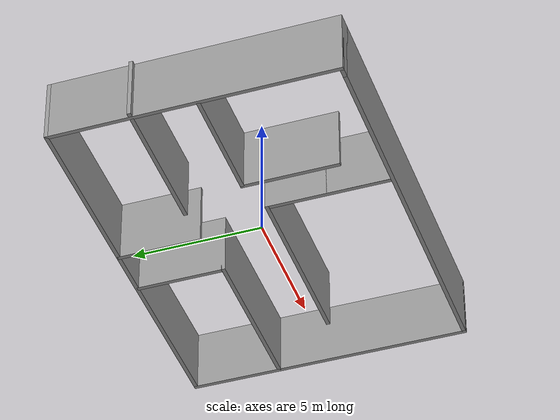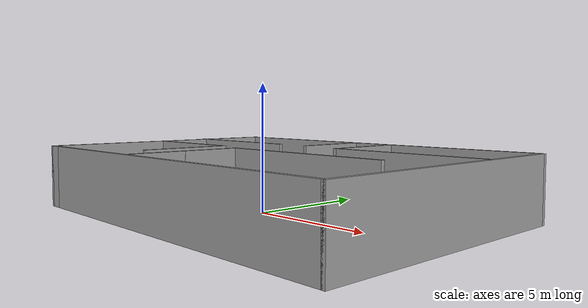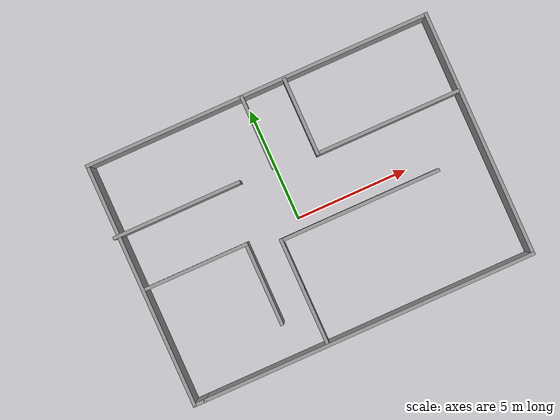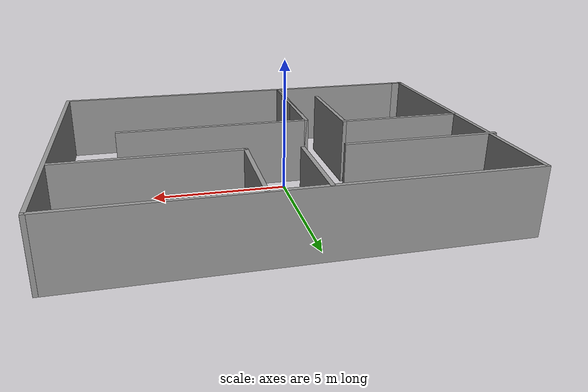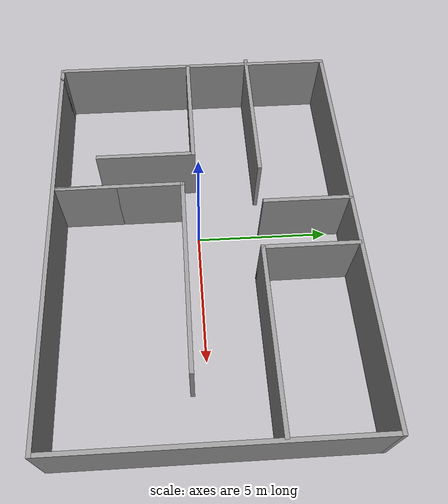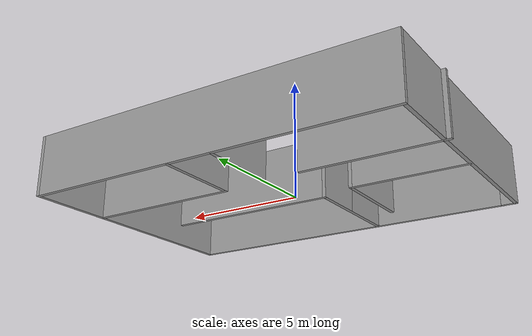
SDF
<?xml version='1.0'?>
<sdf version='1.7'>
  <model name='labver3'>
    <pose>0.527354 0.125 0 0 -0 0</pose>
    <link name='Wall_1'>
      <collision name='Wall_1_Collision'>
        <geometry>
          <box>
            <size>15 0.15 2.5</size>
          </box>
        </geometry>
        <pose>0 0 1.25 0 -0 0</pose>
      </collision>
      <visual name='Wall_1_Visual'>
        <pose>0 0 1.25 0 -0 0</pose>
        <geometry>
          <box>
            <size>15 0.15 2.5</size>
          </box>
        </geometry>
        <material>
          <script>
            <uri>file://media/materials/scripts/gazebo.material</uri>
            <name>Gazebo/Grey</name>
          </script>
          <ambient>1 1 1 1</ambient>
        </material>
        <meta>
          <layer>0</layer>
        </meta>
      </visual>
      <pose>0.337646 -5.425 0 0 -0 0</pose>
    </link>
    <link name='Wall_10'>
      <collision name='Wall_10_Collision'>
        <geometry>
          <box>
            <size>4.75 0.15 2.5</size>
          </box>
        </geometry>
        <pose>0 0 1.25 0 -0 0</pose>
      </collision>
      <visual name='Wall_10_Visual'>
        <pose>0 0 1.25 0 -0 0</pose>
        <geometry>
          <box>
            <size>4.75 0.15 2.5</size>
          </box>
        </geometry>
        <material>
          <script>
            <uri>file://media/materials/scripts/gazebo.material</uri>
            <name>Gazebo/Grey</name>
          </script>
          <ambient>1 1 1 1</ambient>
        </material>
        <meta>
          <layer>0</layer>
        </meta>
      </visual>
      <pose>-1.52706 -2.97213 0 0 -0 -1.5708</pose>
    </link>
    <link name='Wall_11'>
      <collision name='Wall_11_Collision'>
        <geometry>
          <box>
            <size>4.75 0.15 2.5</size>
          </box>
        </geometry>
        <pose>0 0 1.25 0 -0 0</pose>
      </collision>
      <visual name='Wall_11_Visual'>
        <pose>0 0 1.25 0 -0 0</pose>
        <geometry>
          <box>
            <size>4.75 0.15 2.5</size>
          </box>
        </geometry>
        <material>
          <script>
            <uri>file://media/materials/scripts/gazebo.material</uri>
            <name>Gazebo/Grey</name>
          </script>
          <ambient>1 1 1 1</ambient>
        </material>
        <meta>
          <layer>0</layer>
        </meta>
      </visual>
      <pose>-1.52706 -2.97213 0 0 -0 1.5708</pose>
    </link>
    <link name='Wall_12'>
      <collision name='Wall_12_Collision'>
        <geometry>
          <box>
            <size>7.25 0.15 2.5</size>
          </box>
        </geometry>
        <pose>0 0 1.25 0 -0 0</pose>
      </collision>
      <visual name='Wall_12_Visual'>
        <pose>0 0 1.25 0 -0 0</pose>
        <geometry>
          <box>
            <size>7.25 0.15 2.5</size>
          </box>
        </geometry>
        <material>
          <script>
            <uri>file://media/materials/scripts/gazebo.material</uri>
            <name>Gazebo/Grey</name>
          </script>
          <ambient>1 1 1 1</ambient>
        </material>
        <meta>
          <layer>0</layer>
        </meta>
      </visual>
      <pose>2.02294 -0.672133 0 0 -0 0</pose>
    </link>
    <link name='Wall_14'>
      <collision name='Wall_14_Collision'>
        <geometry>
          <box>
            <size>3.25 0.15 2.5</size>
          </box>
        </geometry>
        <pose>0 0 1.25 0 -0 0</pose>
      </collision>
      <visual name='Wall_14_Visual'>
        <pose>0 0 1.25 0 -0 0</pose>
        <geometry>
          <box>
            <size>3.25 0.15 2.5</size>
          </box>
        </geometry>
        <material>
          <script>
            <uri>file://media/materials/scripts/gazebo.material</uri>
            <name>Gazebo/Grey</name>
          </script>
          <ambient>1 1 1 1</ambient>
        </material>
        <meta>
          <layer>0</layer>
        </meta>
      </visual>
      <pose>-0.599325 3.83095 0 0 -0 -1.5708</pose>
    </link>
    <link name='Wall_16'>
      <collision name='Wall_16_Collision'>
        <geometry>
          <box>
            <size>5.75 0.15 2.5</size>
          </box>
        </geometry>
        <pose>0 0 1.25 0 -0 0</pose>
      </collision>
      <visual name='Wall_16_Visual'>
        <pose>0 0 1.25 0 -0 0</pose>
        <geometry>
          <box>
            <size>5.75 0.15 2.5</size>
          </box>
        </geometry>
        <material>
          <script>
            <uri>file://media/materials/scripts/gazebo.material</uri>
            <name>Gazebo/Grey</name>
          </script>
          <ambient>1 1 1 1</ambient>
        </material>
        <meta>
          <layer>0</layer>
        </meta>
      </visual>
      <pose>-4.96265 2.24795 0 0 -0 0</pose>
    </link>
    <link name='Wall_18'>
      <collision name='Wall_18_Collision'>
        <geometry>
          <box>
            <size>3.5 0.15 2.5</size>
          </box>
        </geometry>
        <pose>0 0 1.25 0 -0 0</pose>
      </collision>
      <visual name='Wall_18_Visual'>
        <pose>0 0 1.25 0 -0 0</pose>
        <geometry>
          <box>
            <size>3.5 0.15 2.5</size>
          </box>
        </geometry>
        <material>
          <script>
            <uri>file://media/materials/scripts/gazebo.material</uri>
            <name>Gazebo/Grey</name>
          </script>
          <ambient>1 1 1 1</ambient>
        </material>
        <meta>
          <layer>0</layer>
        </meta>
      </visual>
      <pose>1.31698 3.67553 0 0 -0 -1.5708</pose>
    </link>
    <link name='Wall_19'>
      <collision name='Wall_19_Collision'>
        <geometry>
          <box>
            <size>6.5 0.15 2.5</size>
          </box>
        </geometry>
        <pose>0 0 1.25 0 -0 0</pose>
      </collision>
      <visual name='Wall_19_Visual'>
        <pose>0 0 1.25 0 -0 0</pose>
        <geometry>
          <box>
            <size>6.5 0.15 2.5</size>
          </box>
        </geometry>
        <material>
          <script>
            <uri>file://media/materials/scripts/gazebo.material</uri>
            <name>Gazebo/Grey</name>
          </script>
          <ambient>1 1 1 1</ambient>
        </material>
        <meta>
          <layer>0</layer>
        </meta>
      </visual>
      <pose>4.49198 2.00053 0 0 -0 0</pose>
    </link>
    <link name='Wall_2'>
      <collision name='Wall_2_Collision'>
        <geometry>
          <box>
            <size>11 0.15 2.5</size>
          </box>
        </geometry>
        <pose>0 0 1.25 0 -0 0</pose>
      </collision>
      <visual name='Wall_2_Visual'>
        <pose>0 0 1.25 0 -0 0</pose>
        <geometry>
          <box>
            <size>11 0.15 2.5</size>
          </box>
        </geometry>
        <material>
          <script>
            <uri>file://media/materials/scripts/gazebo.material</uri>
            <name>Gazebo/Grey</name>
          </script>
          <ambient>1 1 1 1</ambient>
        </material>
        <meta>
          <layer>0</layer>
        </meta>
      </visual>
      <pose>7.76265 0 0 0 -0 1.5708</pose>
    </link>
    <link name='Wall_3'>
      <collision name='Wall_3_Collision'>
        <geometry>
          <box>
            <size>15.5 0.15 2.5</size>
          </box>
        </geometry>
        <pose>0 0 1.25 0 -0 0</pose>
      </collision>
      <visual name='Wall_3_Visual'>
        <pose>0 0 1.25 0 -0 0</pose>
        <geometry>
          <box>
            <size>15.5 0.15 2.5</size>
          </box>
        </geometry>
        <material>
          <script>
            <uri>file://media/materials/scripts/gazebo.material</uri>
            <name>Gazebo/Grey</name>
          </script>
          <ambient>1 1 1 1</ambient>
        </material>
        <meta>
          <layer>0</layer>
        </meta>
      </visual>
      <pose>0.087646 5.425 0 0 -0 3.14159</pose>
    </link>
    <link name='Wall_4'>
      <collision name='Wall_4_Collision'>
        <geometry>
          <box>
            <size>11 0.15 2.5</size>
          </box>
        </geometry>
        <pose>0 0 1.25 0 -0 0</pose>
      </collision>
      <visual name='Wall_4_Visual'>
        <pose>0 0 1.25 0 -0 0</pose>
        <geometry>
          <box>
            <size>11 0.15 2.5</size>
          </box>
        </geometry>
        <material>
          <script>
            <uri>file://media/materials/scripts/gazebo.material</uri>
            <name>Gazebo/Grey</name>
          </script>
          <ambient>1 1 1 1</ambient>
        </material>
        <meta>
          <layer>0</layer>
        </meta>
      </visual>
      <pose>-7.58735 0 0 0 -0 -1.5708</pose>
    </link>
    <link name='Wall_5'>
      <collision name='Wall_5_Collision'>
        <geometry>
          <box>
            <size>0.65 0.15 2.5</size>
          </box>
        </geometry>
        <pose>0 0 1.25 0 -0 0</pose>
      </collision>
      <visual name='Wall_5_Visual'>
        <pose>0 0 1.25 0 -0 0</pose>
        <geometry>
          <box>
            <size>0.65 0.15 2.5</size>
          </box>
        </geometry>
        <material>
          <script>
            <uri>file://media/materials/scripts/gazebo.material</uri>
            <name>Gazebo/Grey</name>
          </script>
          <ambient>1 1 1 1</ambient>
        </material>
        <meta>
          <layer>0</layer>
        </meta>
      </visual>
      <pose>-7.33735 -5.425 0 0 -0 0</pose>
    </link>
    <link name='Wall_7'>
      <collision name='Wall_7_Collision'>
        <geometry>
          <box>
            <size>4.75 0.15 2.5</size>
          </box>
        </geometry>
        <pose>0 0 1.25 0 -0 0</pose>
      </collision>
      <visual name='Wall_7_Visual'>
        <pose>0 0 1.25 0 -0 0</pose>
        <geometry>
          <box>
            <size>4.75 0.15 2.5</size>
          </box>
        </geometry>
        <material>
          <script>
            <uri>file://media/materials/scripts/gazebo.material</uri>
            <name>Gazebo/Grey</name>
          </script>
          <ambient>1 1 1 1</ambient>
        </material>
        <meta>
          <layer>0</layer>
        </meta>
      </visual>
      <pose>-5.21931 -0.215871 0 0 -0 0</pose>
    </link>
    <link name='Wall_8'>
      <collision name='Wall_8_Collision'>
        <geometry>
          <box>
            <size>3.75 0.15 2.5</size>
          </box>
        </geometry>
        <pose>0 0 1.25 0 -0 0</pose>
      </collision>
      <visual name='Wall_8_Visual'>
        <pose>0 0 1.25 0 -0 0</pose>
        <geometry>
          <box>
            <size>3.75 0.15 2.5</size>
          </box>
        </geometry>
        <material>
          <script>
            <uri>file://media/materials/scripts/gazebo.material</uri>
            <name>Gazebo/Grey</name>
          </script>
          <ambient>1 1 1 1</ambient>
        </material>
        <meta>
          <layer>0</layer>
        </meta>
      </visual>
      <pose>-2.91931 -2.01587 0 0 -0 -1.5708</pose>
    </link>
    <static>1</static>
  </model>
</sdf>
